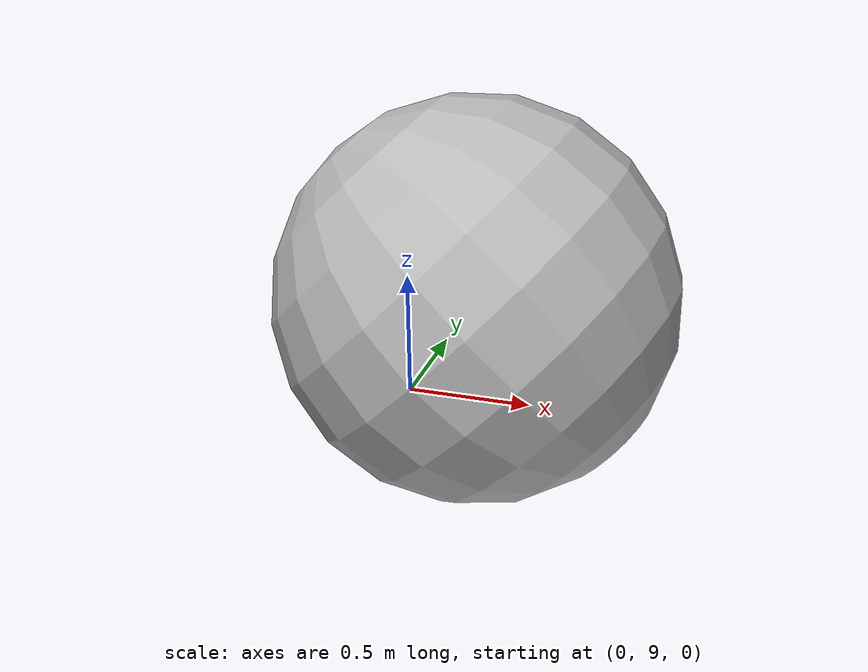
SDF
<sdf version='1.7'>
  <world name="default">
    <model name='test_nested_model_with_frames'>
      <frame name='test_model_with_frames::__model__' attached_to='test_model_with_frames::L1'>
        <pose relative_to='__model__'>0 10 0 1.5708 -0 0</pose>
      </frame>
      <frame name='test_model_with_frames::F1' attached_to='test_model_with_frames::__model__'>
        <pose>0 0 0 1.5708 -0 0</pose>
      </frame>
      <frame name='test_model_with_frames::F2' attached_to='test_model_with_frames::__model__'>
        <pose relative_to='test_model_with_frames::F1'>0 0 0 0 0.785398 0</pose>
      </frame>
      <link name='test_model_with_frames::L1'>
        <pose relative_to='test_model_with_frames::F1'>0 0 0 0 -0 0</pose>
        <visual name='V1'>
          <pose relative_to='test_model_with_frames::F2'>0 0 0 0 -0 0</pose>
          <geometry>
            <sphere>
              <radius>1</radius>
            </sphere>
          </geometry>
        </visual>
        <collision name='C1'>
          <pose relative_to='test_model_with_frames::__model__'>0 0 0 0 -0 0</pose>
          <geometry>
            <sphere>
              <radius>1</radius>
            </sphere>
          </geometry>
        </collision>
      </link>
      <link name='test_model_with_frames::L2'>
        <pose relative_to='test_model_with_frames::F1'>1 0 0 0 -0 0</pose>
      </link>
      <link name='test_model_with_frames::L3'>
        <pose relative_to='test_model_with_frames::L2'>0 1 0 0 -0 0</pose>
      </link>
      <link name='test_model_with_frames::L4'>
        <pose relative_to='test_model_with_frames::__model__'>0 0 1 0 -0 0</pose>
      </link>
      <joint name='test_model_with_frames::J1' type='universal'>
        <pose relative_to='test_model_with_frames::L1'>0 0 0 0 -0 0</pose>
        <parent>test_model_with_frames::L1</parent>
        <child>test_model_with_frames::L2</child>
        <axis>
          <xyz expressed_in='test_model_with_frames::F2'>0 0 1</xyz>
          <limit>
            <lower>-1e+16</lower>
            <upper>1e+16</upper>
          </limit>
        </axis>
        <axis2>
          <xyz expressed_in='test_model_with_frames::F2'>1 0 0</xyz>
          <limit/>
        </axis2>
      </joint>
      <joint name='test_model_with_frames::J2' type='revolute'>
        <pose>0 0 1 0 -0 0</pose>
        <parent>test_model_with_frames::L2</parent>
        <child>test_model_with_frames::L3</child>
        <axis>
          <xyz expressed_in='test_model_with_frames::__model__'>0 0 1</xyz>
          <limit>
            <lower>-1e+16</lower>
            <upper>1e+16</upper>
          </limit>
        </axis>
      </joint>
      <joint name='test_model_with_frames::J3' type='fixed'>
        <pose relative_to='test_model_with_frames::__model__'>1 0 1 0 -0 0</pose>
        <parent>test_model_with_frames::L3</parent>
        <child>test_model_with_frames::L4</child>
      </joint>
      <model name='test_model_with_frames::M2'>
        <pose relative_to='test_model_with_frames::F1'>1 0 0 0 -0 0</pose>
        <link name='L5'>
          <pose>1 0 0 0 -0 0</pose>
        </link>
      </model>
    </model>
  </world>
</sdf>
